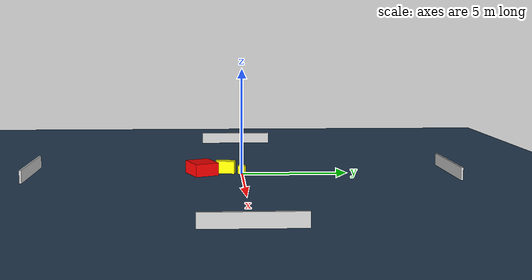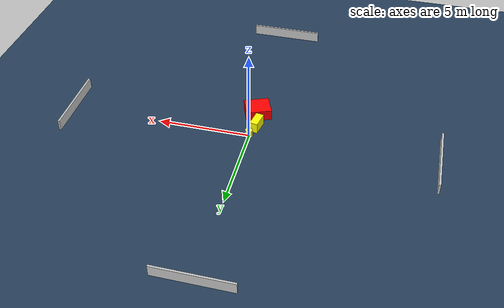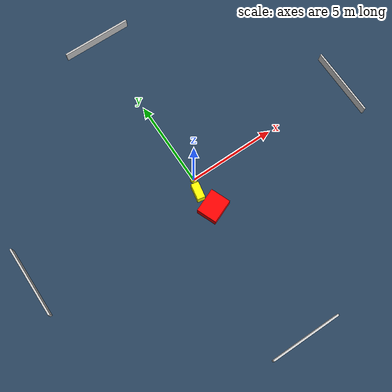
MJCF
<?xml version="1.0" ?>
<mujoco model="generated_environment">
  <option timestep="0.01" integrator="RK4" cone="elliptic"/>
  <default>
    <geom density="1"/>
  </default>
  <asset>
    <texture builtin="gradient" height="3072" name="skybox" rgb1="0.3 0.5 0.7" rgb2="0 0 0" type="skybox" width="512"/>
    <texture builtin="checker" height="300" name="groundplane" rgb1="0.2 0.3 0.4" rgb2="0.1 0.2 0.3" type="2d" width="300"/>
    <material name="groundplane" reflectance="0.2" texrepeat="5 5" texture="groundplane"/>
  </asset>
  <worldbody>
    <light dir="0 0 -1" directional="true" pos="0 0 1.5"/>
    <geom condim="3" friction="0.5 0.005 0.001" material="groundplane" name="floor" pos="0 0 0" size="0 0 0.05" type="plane"/>
    <body name="walls">
      <geom name="wall_1" condim="4" pos="-10.0 0.0 0.3" rgba="0.800000011920929 0.800000011920929 0.800000011920929 1.0" size="0.05 2.0 0.3" type="box"/>
      <geom name="wall_2" condim="4" pos="10.0 0.0 0.3" rgba="0.800000011920929 0.800000011920929 0.800000011920929 1.0" size="0.05 2.0 0.3" type="box"/>
      <geom name="wall_3" condim="4" pos="0.0 -10.0 0.3" rgba="0.800000011920929 0.800000011920929 0.800000011920929 1.0" size="2.0 0.05 0.3" type="box"/>
      <geom name="wall_4" condim="4" pos="0.0 10.0 0.3" rgba="0.800000011920929 0.800000011920929 0.800000011920929 1.0" size="2.0 0.05 0.3" type="box"/>
    </body>
    <body name="robot">
      <joint name="joint_x" type="slide" pos="0 0 0" axis="1 0 0"/>
      <joint name="joint_y" type="slide" pos="0 0 0" axis="0 1 0"/>
      <geom name="robot" type="cylinder" pos="0.0 0.0 0.2" size="0.2 0.2 0.0" mass="5.0" friction="1.0 0.005 0.0001" condim="4" rgba="1.0 1.0 0.0 1.0"/>
    </body>
    <body name="obstacle_1_movable">
      <geom name="obstacle_1_movable" condim="4" pos="-0.24342648324165633 -0.7740918104818152 0.3" euler="0 0 349.8102560914936" friction="0.0 0.005 0.001" rgba="1.0 1.0 0.0 1.0" size="0.21735524789497948 0.45446048495085123 0.3" type="box" mass="0.1"/>
      <joint type="free"/>
    </body>
    <body name="obstacle_2_static">
      <geom name="obstacle_2_static" condim="4" pos="-0.01960476450176694 -1.9052400853597504 0.3" euler="0 0 22.15487914892747" friction="0.0 0.005 0.001" rgba="1.0 0.0 0.0 1.0" size="0.6867174758181183 0.5742527833156678 0.3" type="box"/>
    </body>
  </worldbody>
  <actuator>
    <motor name="actuator_x" joint="joint_x" gear="1" ctrlrange="-1 1"/>
    <motor name="actuator_y" joint="joint_y" gear="1" ctrlrange="-1 1"/>
  </actuator>
</mujoco>
